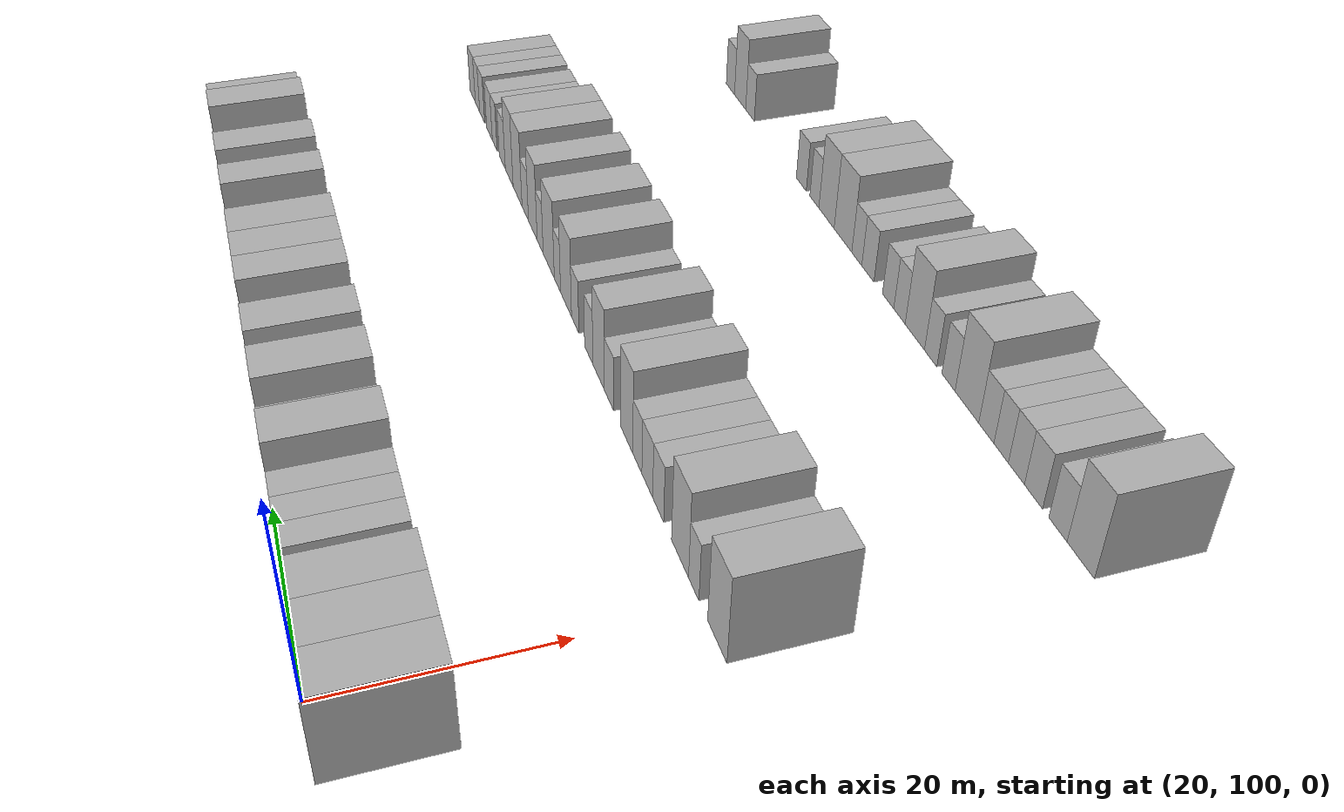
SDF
<sdf version="1.6">
 <world name="default">
  <model name="building_100">
   <static>1</static>
   <pose>25.0000 95.0212 0 0.000000 0.000000 0.000000</pose>
   <link name="link">
    <pose>0 0 4.50 0 0 0</pose>
    <collision name="collision"><geometry><box><size>10.0000 4.2486 9.0000</size></box></geometry></collision>
    <visual name="visual">
     <cast_shadows>0</cast_shadows>
     <geometry><box><size>10.0000 4.2486 9.0000</size></box></geometry>
     <material>
      <script>
       <uri>model://HANNAS_wall/materials/scripts</uri>
       <uri>model://HANNAS_wall/materials/textures</uri>
       <name>vrc/HANNAS_wall</name>
      </script>
     </material>
    </visual>
   </link>
  </model>
  <model name="building_101">
   <static>1</static>
   <pose>25.0000 99.3146 0 0.000000 0.000000 0.000000</pose>
   <link name="link">
    <pose>0 0 4.50 0 0 0</pose>
    <collision name="collision"><geometry><box><size>10.0000 4.3381 9.0000</size></box></geometry></collision>
    <visual name="visual">
     <cast_shadows>0</cast_shadows>
     <geometry><box><size>10.0000 4.3381 9.0000</size></box></geometry>
     <material>
      <script>
       <uri>model://HANNAS_wall/materials/scripts</uri>
       <uri>model://HANNAS_wall/materials/textures</uri>
       <name>vrc/HANNAS_wall</name>
      </script>
     </material>
    </visual>
   </link>
  </model>
  <model name="building_102">
   <static>1</static>
   <pose>25.0000 103.5712 0 0.000000 0.000000 0.000000</pose>
   <link name="link">
    <pose>0 0 4.50 0 0 0</pose>
    <collision name="collision"><geometry><box><size>10.0000 4.1752 9.0000</size></box></geometry></collision>
    <visual name="visual">
     <cast_shadows>0</cast_shadows>
     <geometry><box><size>10.0000 4.1752 9.0000</size></box></geometry>
     <material>
      <script>
       <uri>model://HANNAS_wall/materials/scripts</uri>
       <uri>model://HANNAS_wall/materials/textures</uri>
       <name>vrc/HANNAS_wall</name>
      </script>
     </material>
    </visual>
   </link>
  </model>
  <model name="building_103">
   <static>1</static>
   <pose>25.0000 107.0311 0 0.000000 0.000000 0.000000</pose>
   <link name="link">
    <pose>0 0 3.00 0 0 0</pose>
    <collision name="collision"><geometry><box><size>10.0000 2.7447 6.0000</size></box></geometry></collision>
    <visual name="visual">
     <cast_shadows>0</cast_shadows>
     <geometry><box><size>10.0000 2.7447 6.0000</size></box></geometry>
     <material>
      <script>
       <uri>model://HANNAS_wall/materials/scripts</uri>
       <uri>model://HANNAS_wall/materials/textures</uri>
       <name>vrc/HANNAS_wall</name>
      </script>
     </material>
    </visual>
   </link>
  </model>
  <model name="building_104">
   <static>1</static>
   <pose>25.0000 110.7692 0 0.000000 0.000000 0.000000</pose>
   <link name="link">
    <pose>0 0 3.00 0 0 0</pose>
    <collision name="collision"><geometry><box><size>10.0000 2.7316 6.0000</size></box></geometry></collision>
    <visual name="visual">
     <cast_shadows>0</cast_shadows>
     <geometry><box><size>10.0000 2.7316 6.0000</size></box></geometry>
     <material>
      <script>
       <uri>model://HANNAS_wall/materials/scripts</uri>
       <uri>model://HANNAS_wall/materials/textures</uri>
       <name>vrc/HANNAS_wall</name>
      </script>
     </material>
    </visual>
   </link>
  </model>
  <model name="building_105">
   <static>1</static>
   <pose>25.0000 113.5757 0 0.000000 0.000000 0.000000</pose>
   <link name="link">
    <pose>0 0 3.00 0 0 0</pose>
    <collision name="collision"><geometry><box><size>10.0000 2.8813 6.0000</size></box></geometry></collision>
    <visual name="visual">
     <cast_shadows>0</cast_shadows>
     <geometry><box><size>10.0000 2.8813 6.0000</size></box></geometry>
     <material>
      <script>
       <uri>model://HANNAS_wall/materials/scripts</uri>
       <uri>model://HANNAS_wall/materials/textures</uri>
       <name>vrc/HANNAS_wall</name>
      </script>
     </material>
    </visual>
   </link>
  </model>
  <model name="building_106">
   <static>1</static>
   <pose>25.0000 116.4756 0 0.000000 0.000000 0.000000</pose>
   <link name="link">
    <pose>0 0 3.00 0 0 0</pose>
    <collision name="collision"><geometry><box><size>10.0000 2.9185 6.0000</size></box></geometry></collision>
    <visual name="visual">
     <cast_shadows>0</cast_shadows>
     <geometry><box><size>10.0000 2.9185 6.0000</size></box></geometry>
     <material>
      <script>
       <uri>model://HANNAS_wall/materials/scripts</uri>
       <uri>model://HANNAS_wall/materials/textures</uri>
       <name>vrc/HANNAS_wall</name>
      </script>
     </material>
    </visual>
   </link>
  </model>
  <model name="building_107">
   <static>1</static>
   <pose>25.0000 120.0246 0 0.000000 0.000000 0.000000</pose>
   <link name="link">
    <pose>0 0 4.50 0 0 0</pose>
    <collision name="collision"><geometry><box><size>10.0000 4.1795 9.0000</size></box></geometry></collision>
    <visual name="visual">
     <cast_shadows>0</cast_shadows>
     <geometry><box><size>10.0000 4.1795 9.0000</size></box></geometry>
     <material>
      <script>
       <uri>model://HANNAS_wall/materials/scripts</uri>
       <uri>model://HANNAS_wall/materials/textures</uri>
       <name>vrc/HANNAS_wall</name>
      </script>
     </material>
    </visual>
   </link>
  </model>
  <model name="building_108">
   <static>1</static>
   <pose>25.0000 124.5233 0 0.000000 0.000000 0.000000</pose>
   <link name="link">
    <pose>0 0 3.00 0 0 0</pose>
    <collision name="collision"><geometry><box><size>10.0000 2.8180 6.0000</size></box></geometry></collision>
    <visual name="visual">
     <cast_shadows>0</cast_shadows>
     <geometry><box><size>10.0000 2.8180 6.0000</size></box></geometry>
     <material>
      <script>
       <uri>model://HANNAS_wall/materials/scripts</uri>
       <uri>model://HANNAS_wall/materials/textures</uri>
       <name>vrc/HANNAS_wall</name>
      </script>
     </material>
    </visual>
   </link>
  </model>
  <model name="building_109">
   <static>1</static>
   <pose>25.0000 128.1734 0 0.000000 0.000000 0.000000</pose>
   <link name="link">
    <pose>0 0 4.50 0 0 0</pose>
    <collision name="collision"><geometry><box><size>10.0000 4.4820 9.0000</size></box></geometry></collision>
    <visual name="visual">
     <cast_shadows>0</cast_shadows>
     <geometry><box><size>10.0000 4.4820 9.0000</size></box></geometry>
     <material>
      <script>
       <uri>model://HANNAS_wall/materials/scripts</uri>
       <uri>model://HANNAS_wall/materials/textures</uri>
       <name>vrc/HANNAS_wall</name>
      </script>
     </material>
    </visual>
   </link>
  </model>
  <model name="building_110">
   <static>1</static>
   <pose>25.0000 134.4542 0 0.000000 0.000000 0.000000</pose>
   <link name="link">
    <pose>0 0 4.50 0 0 0</pose>
    <collision name="collision"><geometry><box><size>10.0000 4.0796 9.0000</size></box></geometry></collision>
    <visual name="visual">
     <cast_shadows>0</cast_shadows>
     <geometry><box><size>10.0000 4.0796 9.0000</size></box></geometry>
     <material>
      <script>
       <uri>model://HANNAS_wall/materials/scripts</uri>
       <uri>model://HANNAS_wall/materials/textures</uri>
       <name>vrc/HANNAS_wall</name>
      </script>
     </material>
    </visual>
   </link>
  </model>
  <model name="building_111">
   <static>1</static>
   <pose>25.0000 138.7377 0 0.000000 0.000000 0.000000</pose>
   <link name="link">
    <pose>0 0 3.00 0 0 0</pose>
    <collision name="collision"><geometry><box><size>10.0000 2.4873 6.0000</size></box></geometry></collision>
    <visual name="visual">
     <cast_shadows>0</cast_shadows>
     <geometry><box><size>10.0000 2.4873 6.0000</size></box></geometry>
     <material>
      <script>
       <uri>model://HANNAS_wall/materials/scripts</uri>
       <uri>model://HANNAS_wall/materials/textures</uri>
       <name>vrc/HANNAS_wall</name>
      </script>
     </material>
    </visual>
   </link>
  </model>
  <model name="building_112">
   <static>1</static>
   <pose>25.0000 141.9375 0 0.000000 0.000000 0.000000</pose>
   <link name="link">
    <pose>0 0 4.50 0 0 0</pose>
    <collision name="collision"><geometry><box><size>10.0000 3.9123 9.0000</size></box></geometry></collision>
    <visual name="visual">
     <cast_shadows>0</cast_shadows>
     <geometry><box><size>10.0000 3.9123 9.0000</size></box></geometry>
     <material>
      <script>
       <uri>model://HANNAS_wall/materials/scripts</uri>
       <uri>model://HANNAS_wall/materials/textures</uri>
       <name>vrc/HANNAS_wall</name>
      </script>
     </material>
    </visual>
   </link>
  </model>
  <model name="building_113">
   <static>1</static>
   <pose>25.0000 145.9076 0 0.000000 0.000000 0.000000</pose>
   <link name="link">
    <pose>0 0 4.50 0 0 0</pose>
    <collision name="collision"><geometry><box><size>10.0000 4.0279 9.0000</size></box></geometry></collision>
    <visual name="visual">
     <cast_shadows>0</cast_shadows>
     <geometry><box><size>10.0000 4.0279 9.0000</size></box></geometry>
     <material>
      <script>
       <uri>model://HANNAS_wall/materials/scripts</uri>
       <uri>model://HANNAS_wall/materials/textures</uri>
       <name>vrc/HANNAS_wall</name>
      </script>
     </material>
    </visual>
   </link>
  </model>
  <model name="building_114">
   <static>1</static>
   <pose>25.0000 149.9722 0 0.000000 0.000000 0.000000</pose>
   <link name="link">
    <pose>0 0 4.50 0 0 0</pose>
    <collision name="collision"><geometry><box><size>10.0000 4.1014 9.0000</size></box></geometry></collision>
    <visual name="visual">
     <cast_shadows>0</cast_shadows>
     <geometry><box><size>10.0000 4.1014 9.0000</size></box></geometry>
     <material>
      <script>
       <uri>model://HANNAS_wall/materials/scripts</uri>
       <uri>model://HANNAS_wall/materials/textures</uri>
       <name>vrc/HANNAS_wall</name>
      </script>
     </material>
    </visual>
   </link>
  </model>
  <model name="building_115">
   <static>1</static>
   <pose>25.0000 154.2797 0 0.000000 0.000000 0.000000</pose>
   <link name="link">
    <pose>0 0 3.00 0 0 0</pose>
    <collision name="collision"><geometry><box><size>10.0000 2.5136 6.0000</size></box></geometry></collision>
    <visual name="visual">
     <cast_shadows>0</cast_shadows>
     <geometry><box><size>10.0000 2.5136 6.0000</size></box></geometry>
     <material>
      <script>
       <uri>model://HANNAS_wall/materials/scripts</uri>
       <uri>model://HANNAS_wall/materials/textures</uri>
       <name>vrc/HANNAS_wall</name>
      </script>
     </material>
    </visual>
   </link>
  </model>
  <model name="building_116">
   <static>1</static>
   <pose>25.0000 158.4383 0 0.000000 0.000000 0.000000</pose>
   <link name="link">
    <pose>0 0 4.50 0 0 0</pose>
    <collision name="collision"><geometry><box><size>10.0000 3.8036 9.0000</size></box></geometry></collision>
    <visual name="visual">
     <cast_shadows>0</cast_shadows>
     <geometry><box><size>10.0000 3.8036 9.0000</size></box></geometry>
     <material>
      <script>
       <uri>model://HANNAS_wall/materials/scripts</uri>
       <uri>model://HANNAS_wall/materials/textures</uri>
       <name>vrc/HANNAS_wall</name>
      </script>
     </material>
    </visual>
   </link>
  </model>
  <model name="building_117">
   <static>1</static>
   <pose>25.0000 161.6960 0 0.000000 0.000000 0.000000</pose>
   <link name="link">
    <pose>0 0 3.00 0 0 0</pose>
    <collision name="collision"><geometry><box><size>10.0000 2.7117 6.0000</size></box></geometry></collision>
    <visual name="visual">
     <cast_shadows>0</cast_shadows>
     <geometry><box><size>10.0000 2.7117 6.0000</size></box></geometry>
     <material>
      <script>
       <uri>model://HANNAS_wall/materials/scripts</uri>
       <uri>model://HANNAS_wall/materials/textures</uri>
       <name>vrc/HANNAS_wall</name>
      </script>
     </material>
    </visual>
   </link>
  </model>
  <model name="building_118">
   <static>1</static>
   <pose>25.0000 164.9522 0 0.000000 0.000000 0.000000</pose>
   <link name="link">
    <pose>0 0 4.50 0 0 0</pose>
    <collision name="collision"><geometry><box><size>10.0000 3.8007 9.0000</size></box></geometry></collision>
    <visual name="visual">
     <cast_shadows>0</cast_shadows>
     <geometry><box><size>10.0000 3.8007 9.0000</size></box></geometry>
     <material>
      <script>
       <uri>model://HANNAS_wall/materials/scripts</uri>
       <uri>model://HANNAS_wall/materials/textures</uri>
       <name>vrc/HANNAS_wall</name>
      </script>
     </material>
    </visual>
   </link>
  </model>
  <model name="building_119">
   <static>1</static>
   <pose>25.0000 168.3307 0 0.000000 0.000000 0.000000</pose>
   <link name="link">
    <pose>0 0 3.00 0 0 0</pose>
    <collision name="collision"><geometry><box><size>10.0000 2.9562 6.0000</size></box></geometry></collision>
    <visual name="visual">
     <cast_shadows>0</cast_shadows>
     <geometry><box><size>10.0000 2.9562 6.0000</size></box></geometry>
     <material>
      <script>
       <uri>model://HANNAS_wall/materials/scripts</uri>
       <uri>model://HANNAS_wall/materials/textures</uri>
       <name>vrc/HANNAS_wall</name>
      </script>
     </material>
    </visual>
   </link>
  </model>
  <model name="building_120">
   <static>1</static>
   <pose>25.0000 171.0512 0 0.000000 0.000000 0.000000</pose>
   <link name="link">
    <pose>0 0 3.00 0 0 0</pose>
    <collision name="collision"><geometry><box><size>10.0000 2.4848 6.0000</size></box></geometry></collision>
    <visual name="visual">
     <cast_shadows>0</cast_shadows>
     <geometry><box><size>10.0000 2.4848 6.0000</size></box></geometry>
     <material>
      <script>
       <uri>model://HANNAS_wall/materials/scripts</uri>
       <uri>model://HANNAS_wall/materials/textures</uri>
       <name>vrc/HANNAS_wall</name>
      </script>
     </material>
    </visual>
   </link>
  </model>
  <model name="building_121">
   <static>1</static>
   <pose>25.0000 174.2610 0 0.000000 0.000000 0.000000</pose>
   <link name="link">
    <pose>0 0 4.50 0 0 0</pose>
    <collision name="collision"><geometry><box><size>10.0000 3.9348 9.0000</size></box></geometry></collision>
    <visual name="visual">
     <cast_shadows>0</cast_shadows>
     <geometry><box><size>10.0000 3.9348 9.0000</size></box></geometry>
     <material>
      <script>
       <uri>model://HANNAS_wall/materials/scripts</uri>
       <uri>model://HANNAS_wall/materials/textures</uri>
       <name>vrc/HANNAS_wall</name>
      </script>
     </material>
    </visual>
   </link>
  </model>
  <model name="building_122">
   <static>1</static>
   <pose>25.0000 177.5258 0 0.000000 0.000000 0.000000</pose>
   <link name="link">
    <pose>0 0 3.00 0 0 0</pose>
    <collision name="collision"><geometry><box><size>10.0000 2.5947 6.0000</size></box></geometry></collision>
    <visual name="visual">
     <cast_shadows>0</cast_shadows>
     <geometry><box><size>10.0000 2.5947 6.0000</size></box></geometry>
     <material>
      <script>
       <uri>model://HANNAS_wall/materials/scripts</uri>
       <uri>model://HANNAS_wall/materials/textures</uri>
       <name>vrc/HANNAS_wall</name>
      </script>
     </material>
    </visual>
   </link>
  </model>
  <model name="building_123">
   <static>1</static>
   <pose>25.0000 182.0863 0 0.000000 0.000000 0.000000</pose>
   <link name="link">
    <pose>0 0 3.00 0 0 0</pose>
    <collision name="collision"><geometry><box><size>10.0000 2.5264 6.0000</size></box></geometry></collision>
    <visual name="visual">
     <cast_shadows>0</cast_shadows>
     <geometry><box><size>10.0000 2.5264 6.0000</size></box></geometry>
     <material>
      <script>
       <uri>model://HANNAS_wall/materials/scripts</uri>
       <uri>model://HANNAS_wall/materials/textures</uri>
       <name>vrc/HANNAS_wall</name>
      </script>
     </material>
    </visual>
   </link>
  </model>
  <model name="building_228">
   <static>1</static>
   <pose>55.0000 96.6851 0 0.000000 0.000000 0.000000</pose>
   <link name="link">
    <pose>0 0 4.50 0 0 0</pose>
    <collision name="collision"><geometry><box><size>10.0000 4.2185 9.0000</size></box></geometry></collision>
    <visual name="visual">
     <cast_shadows>0</cast_shadows>
     <geometry><box><size>10.0000 4.2185 9.0000</size></box></geometry>
     <material>
      <script>
       <uri>model://HANNAS_wall/materials/scripts</uri>
       <uri>model://HANNAS_wall/materials/textures</uri>
       <name>vrc/HANNAS_wall</name>
      </script>
     </material>
    </visual>
   </link>
  </model>
  <model name="building_229">
   <static>1</static>
   <pose>55.0000 102.0138 0 0.000000 0.000000 0.000000</pose>
   <link name="link">
    <pose>0 0 3.00 0 0 0</pose>
    <collision name="collision"><geometry><box><size>10.0000 2.4387 6.0000</size></box></geometry></collision>
    <visual name="visual">
     <cast_shadows>0</cast_shadows>
     <geometry><box><size>10.0000 2.4387 6.0000</size></box></geometry>
     <material>
      <script>
       <uri>model://HANNAS_wall/materials/scripts</uri>
       <uri>model://HANNAS_wall/materials/textures</uri>
       <name>vrc/HANNAS_wall</name>
      </script>
     </material>
    </visual>
   </link>
  </model>
  <model name="building_230">
   <static>1</static>
   <pose>55.0000 105.3265 0 0.000000 0.000000 0.000000</pose>
   <link name="link">
    <pose>0 0 4.50 0 0 0</pose>
    <collision name="collision"><geometry><box><size>10.0000 4.1866 9.0000</size></box></geometry></collision>
    <visual name="visual">
     <cast_shadows>0</cast_shadows>
     <geometry><box><size>10.0000 4.1866 9.0000</size></box></geometry>
     <material>
      <script>
       <uri>model://HANNAS_wall/materials/scripts</uri>
       <uri>model://HANNAS_wall/materials/textures</uri>
       <name>vrc/HANNAS_wall</name>
      </script>
     </material>
    </visual>
   </link>
  </model>
  <model name="building_231">
   <static>1</static>
   <pose>55.0000 110.8733 0 0.000000 0.000000 0.000000</pose>
   <link name="link">
    <pose>0 0 3.00 0 0 0</pose>
    <collision name="collision"><geometry><box><size>10.0000 2.9071 6.0000</size></box></geometry></collision>
    <visual name="visual">
     <cast_shadows>0</cast_shadows>
     <geometry><box><size>10.0000 2.9071 6.0000</size></box></geometry>
     <material>
      <script>
       <uri>model://HANNAS_wall/materials/scripts</uri>
       <uri>model://HANNAS_wall/materials/textures</uri>
       <name>vrc/HANNAS_wall</name>
      </script>
     </material>
    </visual>
   </link>
  </model>
  <model name="building_232">
   <static>1</static>
   <pose>55.0000 113.8149 0 0.000000 0.000000 0.000000</pose>
   <link name="link">
    <pose>0 0 3.00 0 0 0</pose>
    <collision name="collision"><geometry><box><size>10.0000 2.9761 6.0000</size></box></geometry></collision>
    <visual name="visual">
     <cast_shadows>0</cast_shadows>
     <geometry><box><size>10.0000 2.9761 6.0000</size></box></geometry>
     <material>
      <script>
       <uri>model://HANNAS_wall/materials/scripts</uri>
       <uri>model://HANNAS_wall/materials/textures</uri>
       <name>vrc/HANNAS_wall</name>
      </script>
     </material>
    </visual>
   </link>
  </model>
  <model name="building_233">
   <static>1</static>
   <pose>55.0000 116.5869 0 0.000000 0.000000 0.000000</pose>
   <link name="link">
    <pose>0 0 3.00 0 0 0</pose>
    <collision name="collision"><geometry><box><size>10.0000 2.5680 6.0000</size></box></geometry></collision>
    <visual name="visual">
     <cast_shadows>0</cast_shadows>
     <geometry><box><size>10.0000 2.5680 6.0000</size></box></geometry>
     <material>
      <script>
       <uri>model://HANNAS_wall/materials/scripts</uri>
       <uri>model://HANNAS_wall/materials/textures</uri>
       <name>vrc/HANNAS_wall</name>
      </script>
     </material>
    </visual>
   </link>
  </model>
  <model name="building_234">
   <static>1</static>
   <pose>55.0000 119.7450 0 0.000000 0.000000 0.000000</pose>
   <link name="link">
    <pose>0 0 4.50 0 0 0</pose>
    <collision name="collision"><geometry><box><size>10.0000 3.7482 9.0000</size></box></geometry></collision>
    <visual name="visual">
     <cast_shadows>0</cast_shadows>
     <geometry><box><size>10.0000 3.7482 9.0000</size></box></geometry>
     <material>
      <script>
       <uri>model://HANNAS_wall/materials/scripts</uri>
       <uri>model://HANNAS_wall/materials/textures</uri>
       <name>vrc/HANNAS_wall</name>
      </script>
     </material>
    </visual>
   </link>
  </model>
  <model name="building_235">
   <static>1</static>
   <pose>55.0000 125.0740 0 0.000000 0.000000 0.000000</pose>
   <link name="link">
    <pose>0 0 3.00 0 0 0</pose>
    <collision name="collision"><geometry><box><size>10.0000 2.9099 6.0000</size></box></geometry></collision>
    <visual name="visual">
     <cast_shadows>0</cast_shadows>
     <geometry><box><size>10.0000 2.9099 6.0000</size></box></geometry>
     <material>
      <script>
       <uri>model://HANNAS_wall/materials/scripts</uri>
       <uri>model://HANNAS_wall/materials/textures</uri>
       <name>vrc/HANNAS_wall</name>
      </script>
     </material>
    </visual>
   </link>
  </model>
  <model name="building_236">
   <static>1</static>
   <pose>55.0000 128.4184 0 0.000000 0.000000 0.000000</pose>
   <link name="link">
    <pose>0 0 4.50 0 0 0</pose>
    <collision name="collision"><geometry><box><size>10.0000 3.7788 9.0000</size></box></geometry></collision>
    <visual name="visual">
     <cast_shadows>0</cast_shadows>
     <geometry><box><size>10.0000 3.7788 9.0000</size></box></geometry>
     <material>
      <script>
       <uri>model://HANNAS_wall/materials/scripts</uri>
       <uri>model://HANNAS_wall/materials/textures</uri>
       <name>vrc/HANNAS_wall</name>
      </script>
     </material>
    </visual>
   </link>
  </model>
  <model name="building_237">
   <static>1</static>
   <pose>55.0000 131.7164 0 0.000000 0.000000 0.000000</pose>
   <link name="link">
    <pose>0 0 3.00 0 0 0</pose>
    <collision name="collision"><geometry><box><size>10.0000 2.8171 6.0000</size></box></geometry></collision>
    <visual name="visual">
     <cast_shadows>0</cast_shadows>
     <geometry><box><size>10.0000 2.8171 6.0000</size></box></geometry>
     <material>
      <script>
       <uri>model://HANNAS_wall/materials/scripts</uri>
       <uri>model://HANNAS_wall/materials/textures</uri>
       <name>vrc/HANNAS_wall</name>
      </script>
     </material>
    </visual>
   </link>
  </model>
  <model name="building_238">
   <static>1</static>
   <pose>55.0000 136.4492 0 0.000000 0.000000 0.000000</pose>
   <link name="link">
    <pose>0 0 3.00 0 0 0</pose>
    <collision name="collision"><geometry><box><size>10.0000 2.6486 6.0000</size></box></geometry></collision>
    <visual name="visual">
     <cast_shadows>0</cast_shadows>
     <geometry><box><size>10.0000 2.6486 6.0000</size></box></geometry>
     <material>
      <script>
       <uri>model://HANNAS_wall/materials/scripts</uri>
       <uri>model://HANNAS_wall/materials/textures</uri>
       <name>vrc/HANNAS_wall</name>
      </script>
     </material>
    </visual>
   </link>
  </model>
  <model name="building_239">
   <static>1</static>
   <pose>55.0000 139.8093 0 0.000000 0.000000 0.000000</pose>
   <link name="link">
    <pose>0 0 4.50 0 0 0</pose>
    <collision name="collision"><geometry><box><size>10.0000 4.0717 9.0000</size></box></geometry></collision>
    <visual name="visual">
     <cast_shadows>0</cast_shadows>
     <geometry><box><size>10.0000 4.0717 9.0000</size></box></geometry>
     <material>
      <script>
       <uri>model://HANNAS_wall/materials/scripts</uri>
       <uri>model://HANNAS_wall/materials/textures</uri>
       <name>vrc/HANNAS_wall</name>
      </script>
     </material>
    </visual>
   </link>
  </model>
  <model name="building_240">
   <static>1</static>
   <pose>55.0000 143.0538 0 0.000000 0.000000 0.000000</pose>
   <link name="link">
    <pose>0 0 3.00 0 0 0</pose>
    <collision name="collision"><geometry><box><size>10.0000 2.4172 6.0000</size></box></geometry></collision>
    <visual name="visual">
     <cast_shadows>0</cast_shadows>
     <geometry><box><size>10.0000 2.4172 6.0000</size></box></geometry>
     <material>
      <script>
       <uri>model://HANNAS_wall/materials/scripts</uri>
       <uri>model://HANNAS_wall/materials/textures</uri>
       <name>vrc/HANNAS_wall</name>
      </script>
     </material>
    </visual>
   </link>
  </model>
  <model name="building_241">
   <static>1</static>
   <pose>55.0000 146.4785 0 0.000000 0.000000 0.000000</pose>
   <link name="link">
    <pose>0 0 4.50 0 0 0</pose>
    <collision name="collision"><geometry><box><size>10.0000 4.4322 9.0000</size></box></geometry></collision>
    <visual name="visual">
     <cast_shadows>0</cast_shadows>
     <geometry><box><size>10.0000 4.4322 9.0000</size></box></geometry>
     <material>
      <script>
       <uri>model://HANNAS_wall/materials/scripts</uri>
       <uri>model://HANNAS_wall/materials/textures</uri>
       <name>vrc/HANNAS_wall</name>
      </script>
     </material>
    </visual>
   </link>
  </model>
  <model name="building_242">
   <static>1</static>
   <pose>55.0000 149.9361 0 0.000000 0.000000 0.000000</pose>
   <link name="link">
    <pose>0 0 3.00 0 0 0</pose>
    <collision name="collision"><geometry><box><size>10.0000 2.4829 6.0000</size></box></geometry></collision>
    <visual name="visual">
     <cast_shadows>0</cast_shadows>
     <geometry><box><size>10.0000 2.4829 6.0000</size></box></geometry>
     <material>
      <script>
       <uri>model://HANNAS_wall/materials/scripts</uri>
       <uri>model://HANNAS_wall/materials/textures</uri>
       <name>vrc/HANNAS_wall</name>
      </script>
     </material>
    </visual>
   </link>
  </model>
  <model name="building_243">
   <static>1</static>
   <pose>55.0000 153.0509 0 0.000000 0.000000 0.000000</pose>
   <link name="link">
    <pose>0 0 4.50 0 0 0</pose>
    <collision name="collision"><geometry><box><size>10.0000 3.7467 9.0000</size></box></geometry></collision>
    <visual name="visual">
     <cast_shadows>0</cast_shadows>
     <geometry><box><size>10.0000 3.7467 9.0000</size></box></geometry>
     <material>
      <script>
       <uri>model://HANNAS_wall/materials/scripts</uri>
       <uri>model://HANNAS_wall/materials/textures</uri>
       <name>vrc/HANNAS_wall</name>
      </script>
     </material>
    </visual>
   </link>
  </model>
  <model name="building_244">
   <static>1</static>
   <pose>55.0000 156.3510 0 0.000000 0.000000 0.000000</pose>
   <link name="link">
    <pose>0 0 3.00 0 0 0</pose>
    <collision name="collision"><geometry><box><size>10.0000 2.8535 6.0000</size></box></geometry></collision>
    <visual name="visual">
     <cast_shadows>0</cast_shadows>
     <geometry><box><size>10.0000 2.8535 6.0000</size></box></geometry>
     <material>
      <script>
       <uri>model://HANNAS_wall/materials/scripts</uri>
       <uri>model://HANNAS_wall/materials/textures</uri>
       <name>vrc/HANNAS_wall</name>
      </script>
     </material>
    </visual>
   </link>
  </model>
  <model name="building_245">
   <static>1</static>
   <pose>55.0000 159.8121 0 0.000000 0.000000 0.000000</pose>
   <link name="link">
    <pose>0 0 4.50 0 0 0</pose>
    <collision name="collision"><geometry><box><size>10.0000 4.0686 9.0000</size></box></geometry></collision>
    <visual name="visual">
     <cast_shadows>0</cast_shadows>
     <geometry><box><size>10.0000 4.0686 9.0000</size></box></geometry>
     <material>
      <script>
       <uri>model://HANNAS_wall/materials/scripts</uri>
       <uri>model://HANNAS_wall/materials/textures</uri>
       <name>vrc/HANNAS_wall</name>
      </script>
     </material>
    </visual>
   </link>
  </model>
  <model name="building_246">
   <static>1</static>
   <pose>55.0000 163.7029 0 0.000000 0.000000 0.000000</pose>
   <link name="link">
    <pose>0 0 4.50 0 0 0</pose>
    <collision name="collision"><geometry><box><size>10.0000 3.7131 9.0000</size></box></geometry></collision>
    <visual name="visual">
     <cast_shadows>0</cast_shadows>
     <geometry><box><size>10.0000 3.7131 9.0000</size></box></geometry>
     <material>
      <script>
       <uri>model://HANNAS_wall/materials/scripts</uri>
       <uri>model://HANNAS_wall/materials/textures</uri>
       <name>vrc/HANNAS_wall</name>
      </script>
     </material>
    </visual>
   </link>
  </model>
  <model name="building_247">
   <static>1</static>
   <pose>55.0000 167.0591 0 0.000000 0.000000 0.000000</pose>
   <link name="link">
    <pose>0 0 3.00 0 0 0</pose>
    <collision name="collision"><geometry><box><size>10.0000 2.9993 6.0000</size></box></geometry></collision>
    <visual name="visual">
     <cast_shadows>0</cast_shadows>
     <geometry><box><size>10.0000 2.9993 6.0000</size></box></geometry>
     <material>
      <script>
       <uri>model://HANNAS_wall/materials/scripts</uri>
       <uri>model://HANNAS_wall/materials/textures</uri>
       <name>vrc/HANNAS_wall</name>
      </script>
     </material>
    </visual>
   </link>
  </model>
  <model name="building_248">
   <static>1</static>
   <pose>55.0000 170.8082 0 0.000000 0.000000 0.000000</pose>
   <link name="link">
    <pose>0 0 3.00 0 0 0</pose>
    <collision name="collision"><geometry><box><size>10.0000 2.4989 6.0000</size></box></geometry></collision>
    <visual name="visual">
     <cast_shadows>0</cast_shadows>
     <geometry><box><size>10.0000 2.4989 6.0000</size></box></geometry>
     <material>
      <script>
       <uri>model://HANNAS_wall/materials/scripts</uri>
       <uri>model://HANNAS_wall/materials/textures</uri>
       <name>vrc/HANNAS_wall</name>
      </script>
     </material>
    </visual>
   </link>
  </model>
  <model name="building_249">
   <static>1</static>
   <pose>55.0000 173.5414 0 0.000000 0.000000 0.000000</pose>
   <link name="link">
    <pose>0 0 3.00 0 0 0</pose>
    <collision name="collision"><geometry><box><size>10.0000 2.9676 6.0000</size></box></geometry></collision>
    <visual name="visual">
     <cast_shadows>0</cast_shadows>
     <geometry><box><size>10.0000 2.9676 6.0000</size></box></geometry>
     <material>
      <script>
       <uri>model://HANNAS_wall/materials/scripts</uri>
       <uri>model://HANNAS_wall/materials/textures</uri>
       <name>vrc/HANNAS_wall</name>
      </script>
     </material>
    </visual>
   </link>
  </model>
  <model name="building_250">
   <static>1</static>
   <pose>55.0000 177.3791 0 0.000000 0.000000 0.000000</pose>
   <link name="link">
    <pose>0 0 3.00 0 0 0</pose>
    <collision name="collision"><geometry><box><size>10.0000 2.7076 6.0000</size></box></geometry></collision>
    <visual name="visual">
     <cast_shadows>0</cast_shadows>
     <geometry><box><size>10.0000 2.7076 6.0000</size></box></geometry>
     <material>
      <script>
       <uri>model://HANNAS_wall/materials/scripts</uri>
       <uri>model://HANNAS_wall/materials/textures</uri>
       <name>vrc/HANNAS_wall</name>
      </script>
     </material>
    </visual>
   </link>
  </model>
  <model name="building_251">
   <static>1</static>
   <pose>55.0000 179.9332 0 0.000000 0.000000 0.000000</pose>
   <link name="link">
    <pose>0 0 3.00 0 0 0</pose>
    <collision name="collision"><geometry><box><size>10.0000 2.4007 6.0000</size></box></geometry></collision>
    <visual name="visual">
     <cast_shadows>0</cast_shadows>
     <geometry><box><size>10.0000 2.4007 6.0000</size></box></geometry>
     <material>
      <script>
       <uri>model://HANNAS_wall/materials/scripts</uri>
       <uri>model://HANNAS_wall/materials/textures</uri>
       <name>vrc/HANNAS_wall</name>
      </script>
     </material>
    </visual>
   </link>
  </model>
  <model name="building_252">
   <static>1</static>
   <pose>55.0000 182.6086 0 0.000000 0.000000 0.000000</pose>
   <link name="link">
    <pose>0 0 3.00 0 0 0</pose>
    <collision name="collision"><geometry><box><size>10.0000 2.9500 6.0000</size></box></geometry></collision>
    <visual name="visual">
     <cast_shadows>0</cast_shadows>
     <geometry><box><size>10.0000 2.9500 6.0000</size></box></geometry>
     <material>
      <script>
       <uri>model://HANNAS_wall/materials/scripts</uri>
       <uri>model://HANNAS_wall/materials/textures</uri>
       <name>vrc/HANNAS_wall</name>
      </script>
     </material>
    </visual>
   </link>
  </model>
  <model name="building_373">
   <static>1</static>
   <pose>85.0000 96.1582 0 0.000000 0.000000 0.000000</pose>
   <link name="link">
    <pose>0 0 4.50 0 0 0</pose>
    <collision name="collision"><geometry><box><size>10.0000 4.0575 9.0000</size></box></geometry></collision>
    <visual name="visual">
     <cast_shadows>0</cast_shadows>
     <geometry><box><size>10.0000 4.0575 9.0000</size></box></geometry>
     <material>
      <script>
       <uri>model://HANNAS_wall/materials/scripts</uri>
       <uri>model://HANNAS_wall/materials/textures</uri>
       <name>vrc/HANNAS_wall</name>
      </script>
     </material>
    </visual>
   </link>
  </model>
  <model name="building_374">
   <static>1</static>
   <pose>85.0000 99.5954 0 0.000000 0.000000 0.000000</pose>
   <link name="link">
    <pose>0 0 3.00 0 0 0</pose>
    <collision name="collision"><geometry><box><size>10.0000 2.8169 6.0000</size></box></geometry></collision>
    <visual name="visual">
     <cast_shadows>0</cast_shadows>
     <geometry><box><size>10.0000 2.8169 6.0000</size></box></geometry>
     <material>
      <script>
       <uri>model://HANNAS_wall/materials/scripts</uri>
       <uri>model://HANNAS_wall/materials/textures</uri>
       <name>vrc/HANNAS_wall</name>
      </script>
     </material>
    </visual>
   </link>
  </model>
  <model name="building_375">
   <static>1</static>
   <pose>85.0000 103.4833 0 0.000000 0.000000 0.000000</pose>
   <link name="link">
    <pose>0 0 3.00 0 0 0</pose>
    <collision name="collision"><geometry><box><size>10.0000 2.9588 6.0000</size></box></geometry></collision>
    <visual name="visual">
     <cast_shadows>0</cast_shadows>
     <geometry><box><size>10.0000 2.9588 6.0000</size></box></geometry>
     <material>
      <script>
       <uri>model://HANNAS_wall/materials/scripts</uri>
       <uri>model://HANNAS_wall/materials/textures</uri>
       <name>vrc/HANNAS_wall</name>
      </script>
     </material>
    </visual>
   </link>
  </model>
  <model name="building_376">
   <static>1</static>
   <pose>85.0000 106.3215 0 0.000000 0.000000 0.000000</pose>
   <link name="link">
    <pose>0 0 3.00 0 0 0</pose>
    <collision name="collision"><geometry><box><size>10.0000 2.7176 6.0000</size></box></geometry></collision>
    <visual name="visual">
     <cast_shadows>0</cast_shadows>
     <geometry><box><size>10.0000 2.7176 6.0000</size></box></geometry>
     <material>
      <script>
       <uri>model://HANNAS_wall/materials/scripts</uri>
       <uri>model://HANNAS_wall/materials/textures</uri>
       <name>vrc/HANNAS_wall</name>
      </script>
     </material>
    </visual>
   </link>
  </model>
  <model name="building_377">
   <static>1</static>
   <pose>85.0000 108.9394 0 0.000000 0.000000 0.000000</pose>
   <link name="link">
    <pose>0 0 3.00 0 0 0</pose>
    <collision name="collision"><geometry><box><size>10.0000 2.5183 6.0000</size></box></geometry></collision>
    <visual name="visual">
     <cast_shadows>0</cast_shadows>
     <geometry><box><size>10.0000 2.5183 6.0000</size></box></geometry>
     <material>
      <script>
       <uri>model://HANNAS_wall/materials/scripts</uri>
       <uri>model://HANNAS_wall/materials/textures</uri>
       <name>vrc/HANNAS_wall</name>
      </script>
     </material>
    </visual>
   </link>
  </model>
  <model name="building_378">
   <static>1</static>
   <pose>85.0000 111.5667 0 0.000000 0.000000 0.000000</pose>
   <link name="link">
    <pose>0 0 3.00 0 0 0</pose>
    <collision name="collision"><geometry><box><size>10.0000 2.7363 6.0000</size></box></geometry></collision>
    <visual name="visual">
     <cast_shadows>0</cast_shadows>
     <geometry><box><size>10.0000 2.7363 6.0000</size></box></geometry>
     <material>
      <script>
       <uri>model://HANNAS_wall/materials/scripts</uri>
       <uri>model://HANNAS_wall/materials/textures</uri>
       <name>vrc/HANNAS_wall</name>
      </script>
     </material>
    </visual>
   </link>
  </model>
  <model name="building_379">
   <static>1</static>
   <pose>85.0000 115.1622 0 0.000000 0.000000 0.000000</pose>
   <link name="link">
    <pose>0 0 4.50 0 0 0</pose>
    <collision name="collision"><geometry><box><size>10.0000 4.4548 9.0000</size></box></geometry></collision>
    <visual name="visual">
     <cast_shadows>0</cast_shadows>
     <geometry><box><size>10.0000 4.4548 9.0000</size></box></geometry>
     <material>
      <script>
       <uri>model://HANNAS_wall/materials/scripts</uri>
       <uri>model://HANNAS_wall/materials/textures</uri>
       <name>vrc/HANNAS_wall</name>
      </script>
     </material>
    </visual>
   </link>
  </model>
  <model name="building_380">
   <static>1</static>
   <pose>85.0000 118.6826 0 0.000000 0.000000 0.000000</pose>
   <link name="link">
    <pose>0 0 3.00 0 0 0</pose>
    <collision name="collision"><geometry><box><size>10.0000 2.5860 6.0000</size></box></geometry></collision>
    <visual name="visual">
     <cast_shadows>0</cast_shadows>
     <geometry><box><size>10.0000 2.5860 6.0000</size></box></geometry>
     <material>
      <script>
       <uri>model://HANNAS_wall/materials/scripts</uri>
       <uri>model://HANNAS_wall/materials/textures</uri>
       <name>vrc/HANNAS_wall</name>
      </script>
     </material>
    </visual>
   </link>
  </model>
  <model name="building_381">
   <static>1</static>
   <pose>85.0000 122.2438 0 0.000000 0.000000 0.000000</pose>
   <link name="link">
    <pose>0 0 3.00 0 0 0</pose>
    <collision name="collision"><geometry><box><size>10.0000 2.5363 6.0000</size></box></geometry></collision>
    <visual name="visual">
     <cast_shadows>0</cast_shadows>
     <geometry><box><size>10.0000 2.5363 6.0000</size></box></geometry>
     <material>
      <script>
       <uri>model://HANNAS_wall/materials/scripts</uri>
       <uri>model://HANNAS_wall/materials/textures</uri>
       <name>vrc/HANNAS_wall</name>
      </script>
     </material>
    </visual>
   </link>
  </model>
  <model name="building_382">
   <static>1</static>
   <pose>85.0000 125.5616 0 0.000000 0.000000 0.000000</pose>
   <link name="link">
    <pose>0 0 4.50 0 0 0</pose>
    <collision name="collision"><geometry><box><size>10.0000 4.0994 9.0000</size></box></geometry></collision>
    <visual name="visual">
     <cast_shadows>0</cast_shadows>
     <geometry><box><size>10.0000 4.0994 9.0000</size></box></geometry>
     <material>
      <script>
       <uri>model://HANNAS_wall/materials/scripts</uri>
       <uri>model://HANNAS_wall/materials/textures</uri>
       <name>vrc/HANNAS_wall</name>
      </script>
     </material>
    </visual>
   </link>
  </model>
  <model name="building_383">
   <static>1</static>
   <pose>85.0000 128.8665 0 0.000000 0.000000 0.000000</pose>
   <link name="link">
    <pose>0 0 3.00 0 0 0</pose>
    <collision name="collision"><geometry><box><size>10.0000 2.5104 6.0000</size></box></geometry></collision>
    <visual name="visual">
     <cast_shadows>0</cast_shadows>
     <geometry><box><size>10.0000 2.5104 6.0000</size></box></geometry>
     <material>
      <script>
       <uri>model://HANNAS_wall/materials/scripts</uri>
       <uri>model://HANNAS_wall/materials/textures</uri>
       <name>vrc/HANNAS_wall</name>
      </script>
     </material>
    </visual>
   </link>
  </model>
  <model name="building_384">
   <static>1</static>
   <pose>85.0000 131.3891 0 0.000000 0.000000 0.000000</pose>
   <link name="link">
    <pose>0 0 3.00 0 0 0</pose>
    <collision name="collision"><geometry><box><size>10.0000 2.5348 6.0000</size></box></geometry></collision>
    <visual name="visual">
     <cast_shadows>0</cast_shadows>
     <geometry><box><size>10.0000 2.5348 6.0000</size></box></geometry>
     <material>
      <script>
       <uri>model://HANNAS_wall/materials/scripts</uri>
       <uri>model://HANNAS_wall/materials/textures</uri>
       <name>vrc/HANNAS_wall</name>
      </script>
     </material>
    </visual>
   </link>
  </model>
  <model name="building_385">
   <static>1</static>
   <pose>85.0000 136.0988 0 0.000000 0.000000 0.000000</pose>
   <link name="link">
    <pose>0 0 3.00 0 0 0</pose>
    <collision name="collision"><geometry><box><size>10.0000 2.8846 6.0000</size></box></geometry></collision>
    <visual name="visual">
     <cast_shadows>0</cast_shadows>
     <geometry><box><size>10.0000 2.8846 6.0000</size></box></geometry>
     <material>
      <script>
       <uri>model://HANNAS_wall/materials/scripts</uri>
       <uri>model://HANNAS_wall/materials/textures</uri>
       <name>vrc/HANNAS_wall</name>
      </script>
     </material>
    </visual>
   </link>
  </model>
  <model name="building_386">
   <static>1</static>
   <pose>85.0000 138.7629 0 0.000000 0.000000 0.000000</pose>
   <link name="link">
    <pose>0 0 3.00 0 0 0</pose>
    <collision name="collision"><geometry><box><size>10.0000 2.4436 6.0000</size></box></geometry></collision>
    <visual name="visual">
     <cast_shadows>0</cast_shadows>
     <geometry><box><size>10.0000 2.4436 6.0000</size></box></geometry>
     <material>
      <script>
       <uri>model://HANNAS_wall/materials/scripts</uri>
       <uri>model://HANNAS_wall/materials/textures</uri>
       <name>vrc/HANNAS_wall</name>
      </script>
     </material>
    </visual>
   </link>
  </model>
  <model name="building_387">
   <static>1</static>
   <pose>85.0000 142.2221 0 0.000000 0.000000 0.000000</pose>
   <link name="link">
    <pose>0 0 4.50 0 0 0</pose>
    <collision name="collision"><geometry><box><size>10.0000 4.4749 9.0000</size></box></geometry></collision>
    <visual name="visual">
     <cast_shadows>0</cast_shadows>
     <geometry><box><size>10.0000 4.4749 9.0000</size></box></geometry>
     <material>
      <script>
       <uri>model://HANNAS_wall/materials/scripts</uri>
       <uri>model://HANNAS_wall/materials/textures</uri>
       <name>vrc/HANNAS_wall</name>
      </script>
     </material>
    </visual>
   </link>
  </model>
  <model name="building_388">
   <static>1</static>
   <pose>85.0000 146.4745 0 0.000000 0.000000 0.000000</pose>
   <link name="link">
    <pose>0 0 4.50 0 0 0</pose>
    <collision name="collision"><geometry><box><size>10.0000 4.0299 9.0000</size></box></geometry></collision>
    <visual name="visual">
     <cast_shadows>0</cast_shadows>
     <geometry><box><size>10.0000 4.0299 9.0000</size></box></geometry>
     <material>
      <script>
       <uri>model://HANNAS_wall/materials/scripts</uri>
       <uri>model://HANNAS_wall/materials/textures</uri>
       <name>vrc/HANNAS_wall</name>
      </script>
     </material>
    </visual>
   </link>
  </model>
  <model name="building_389">
   <static>1</static>
   <pose>85.0000 149.7169 0 0.000000 0.000000 0.000000</pose>
   <link name="link">
    <pose>0 0 3.00 0 0 0</pose>
    <collision name="collision"><geometry><box><size>10.0000 2.4550 6.0000</size></box></geometry></collision>
    <visual name="visual">
     <cast_shadows>0</cast_shadows>
     <geometry><box><size>10.0000 2.4550 6.0000</size></box></geometry>
     <material>
      <script>
       <uri>model://HANNAS_wall/materials/scripts</uri>
       <uri>model://HANNAS_wall/materials/textures</uri>
       <name>vrc/HANNAS_wall</name>
      </script>
     </material>
    </visual>
   </link>
  </model>
  <model name="building_390">
   <static>1</static>
   <pose>85.0000 153.3529 0 0.000000 0.000000 0.000000</pose>
   <link name="link">
    <pose>0 0 3.00 0 0 0</pose>
    <collision name="collision"><geometry><box><size>10.0000 2.8170 6.0000</size></box></geometry></collision>
    <visual name="visual">
     <cast_shadows>0</cast_shadows>
     <geometry><box><size>10.0000 2.8170 6.0000</size></box></geometry>
     <material>
      <script>
       <uri>model://HANNAS_wall/materials/scripts</uri>
       <uri>model://HANNAS_wall/materials/textures</uri>
       <name>vrc/HANNAS_wall</name>
      </script>
     </material>
    </visual>
   </link>
  </model>
  <model name="building_391">
   <static>1</static>
   <pose>85.0000 169.0068 0 0.000000 0.000000 0.000000</pose>
   <link name="link">
    <pose>0 0 3.00 0 0 0</pose>
    <collision name="collision"><geometry><box><size>10.0000 2.8303 6.0000</size></box></geometry></collision>
    <visual name="visual">
     <cast_shadows>0</cast_shadows>
     <geometry><box><size>10.0000 2.8303 6.0000</size></box></geometry>
     <material>
      <script>
       <uri>model://HANNAS_wall/materials/scripts</uri>
       <uri>model://HANNAS_wall/materials/textures</uri>
       <name>vrc/HANNAS_wall</name>
      </script>
     </material>
    </visual>
   </link>
  </model>
  <model name="building_392">
   <static>1</static>
   <pose>85.0000 172.3016 0 0.000000 0.000000 0.000000</pose>
   <link name="link">
    <pose>0 0 4.50 0 0 0</pose>
    <collision name="collision"><geometry><box><size>10.0000 3.7594 9.0000</size></box></geometry></collision>
    <visual name="visual">
     <cast_shadows>0</cast_shadows>
     <geometry><box><size>10.0000 3.7594 9.0000</size></box></geometry>
     <material>
      <script>
       <uri>model://HANNAS_wall/materials/scripts</uri>
       <uri>model://HANNAS_wall/materials/textures</uri>
       <name>vrc/HANNAS_wall</name>
      </script>
     </material>
    </visual>
   </link>
  </model>
  <model name="building_393">
   <static>1</static>
   <pose>85.0000 175.5959 0 0.000000 0.000000 0.000000</pose>
   <link name="link">
    <pose>0 0 3.00 0 0 0</pose>
    <collision name="collision"><geometry><box><size>10.0000 2.8292 6.0000</size></box></geometry></collision>
    <visual name="visual">
     <cast_shadows>0</cast_shadows>
     <geometry><box><size>10.0000 2.8292 6.0000</size></box></geometry>
     <material>
      <script>
       <uri>model://HANNAS_wall/materials/scripts</uri>
       <uri>model://HANNAS_wall/materials/textures</uri>
       <name>vrc/HANNAS_wall</name>
      </script>
     </material>
    </visual>
   </link>
  </model>
 </world>
</sdf>
